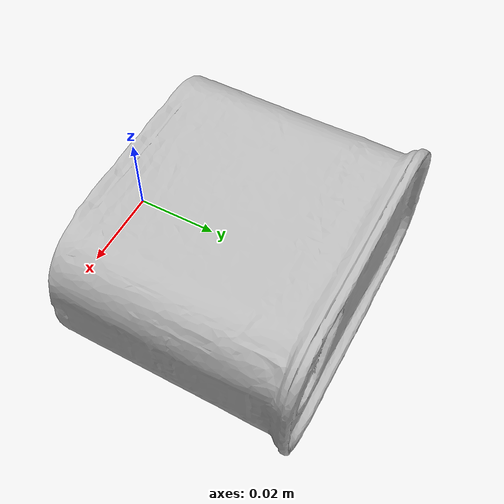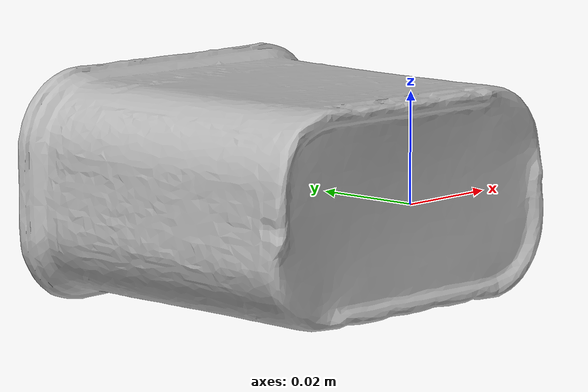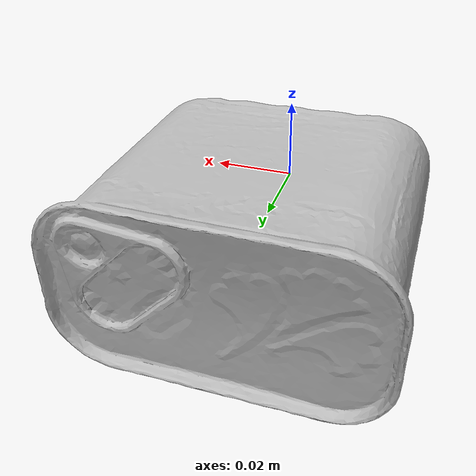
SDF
<?xml version='1.0'?>
<sdf version="1.4">
  <model name="potted_meat">
    <pose>0 0 0  0 0 0</pose>
    <static>0</static>
    <link name="body">
      <inertial>
	<pose>0 0.0287 0  0 0 0</pose>
          <mass>0.37</mass>
          <inertia>
            <ixx>0.000481</ixx>
            <ixy>0.000000</ixy>
            <ixz>0.000000</ixz>
            <iyy>0.000621</iyy>
            <iyz>0.000000</iyz>
            <izz>0.000841</izz>
          </inertia>
      </inertial>
      <collision name="collision">
	<pose>0 0.0287 0  0 0 0</pose>
        <geometry>
          <box>
    		<size> 0.0873 0.0738 0.045 </size>
  	  </box>
        </geometry>
        <surface>
            <friction>
              <ode>
                <mu>30.0</mu>
                <mu2>30.0</mu2>
              </ode>
            </friction>
            <contact>
              <ode>
                <kp>1000000.0</kp>
                <kd>100.0</kd>
                <max_vel>1.0</max_vel>
                <min_depth>0.002</min_depth>
              </ode>
            </contact>
        </surface>
      </collision>
      <visual name="visual">
        <geometry>
          <mesh>
			  <uri>model://potted_meat/meshes/potted.obj</uri>
			  <scale>0.075 0.075 0.075</scale>
          </mesh>
        </geometry>
      </visual>
      <velocity_decay>
        <linear>0.000000</linear>
        <angular>0.000000</angular>
      </velocity_decay>
      <self_collide>0</self_collide>
      <kinematic>0</kinematic>
      <gravity>1</gravity>
    </link>
  </model>
</sdf>
